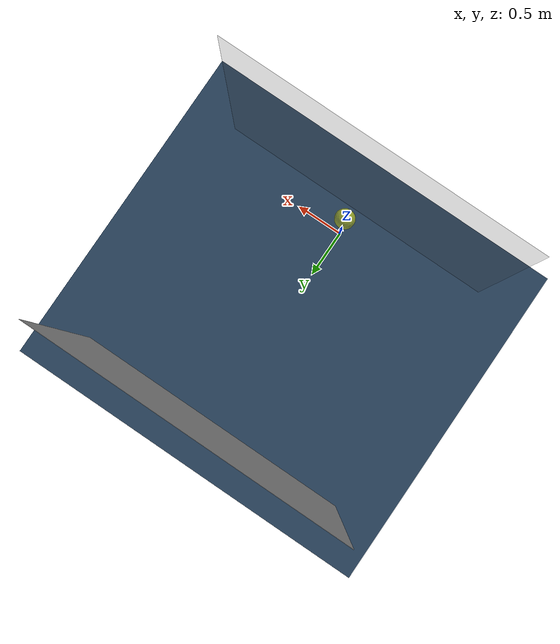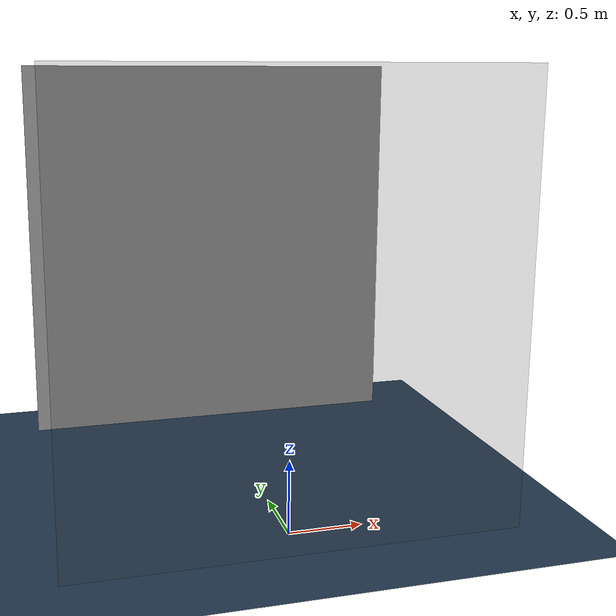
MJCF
<!-- Reference: https://github.com/deepmind/mujoco_menagerie/blob/main/agility_cassie/cassie.xml -->
<mujoco model="2Planes">
  <option timestep="0.005"/>
  <option gravity="0 0 0"/> # Disable the gravity. Ref: https://mujoco.readthedocs.io/en/latest/XMLreference.html#option

  <visual>
    <map force="0.1" zfar="30"/>
    <rgba haze="0.15 0.25 0.35 1"/>
    <global offwidth="400" offheight="320"/>
  </visual>

  <statistic center="0 0 0.7"/>

  <asset>
    <texture type="skybox" builtin="gradient" rgb1=".3 .5 .7" rgb2="0 0 0" width="32" height="512"/>
<!--    I comment this to avoid 6 files cube rendering complications.-->

    <texture name="body" type="cube" builtin="flat" mark="cross" width="127" height="1278" rgb1="0.8 0.6 0.4" rgb2="0.8 0.6 0.4" markrgb="1 1 1" random="0.01"/>
    <material name="body" texture="body" texuniform="true" rgba="0.8 0.6 .4 1"/>

    <texture name="grid" type="2d" builtin="checker" width="512" height="512" rgb1=".1 .2 .3" rgb2=".2 .3 .4"/>
    <material name="grid" texture="grid" texrepeat="1 1" texuniform="true"/> <!--reflectance=".2"-->

<!--    The start of the trial region-->
    <texture name="letter-B" type="cube" gridsize="1 1" file="assets/vector-letter-B.png"/> <!-- The X pic size is 1200 * 1200-->
    <material name="letter-B" texture="letter-B" texuniform="true"/>

    <texture name="letter-X" type="cube" gridsize="1 1" file="assets/vector-letter-X.png"/> <!-- The X pic size is 512 * 512-->
    <material name="letter-X" texture="letter-X" texuniform="true"/>
    <!-- To be noted that the pic size must be integer multiple of the grid size. -->

    <texture name="blue-eye" type="cube" gridsize="3 4" gridlayout=".U..LFRB.D.." file="assets/blue-eye.png"/> <!-- The X pic size is 4096 * 3072-->
    <material name="blue-eye" texture="blue-eye" texuniform="true"/>

    <texture name="smart-glass-display-2d" type="2d" builtin="none" file="assets/vector-letter-B.png" width="5" height="5"/>
    <material name="smart-glass-display-2d" texture="smart-glass-display-2d" texrepeat="1 1" texuniform="true"/>

    <mesh name="hand_thumbprox" file="assets/hand_thumbprox.stl" />
    <mesh name="hand_thumbdist" file="assets/hand_thumbdist.stl" />
<!--    The end of the trial region-->

    <texture name="smart-glass-display-cube-letter-B" type="cube" builtin="none" filedown="assets/vector-letter-B.png"/>
    <material name="smart-glass-display-cube-letter-B" texture="smart-glass-display-cube-letter-B" texuniform="false"/>

    <texture name="smart-glass-display-cube-letter-X" type="cube" builtin="none" filedown="assets/letter-X.png"/>
    <material name="smart-glass-display-cube-letter-X" texture="smart-glass-display-cube-letter-X" texuniform="false"/>

<!--    More materials will be created here with various content textures.-->
  </asset>

  <worldbody>
    <camera name="fixed-eye" pos="0 0 4.5" euler="0 0 0"/>
    <light name="top" directional="true" castshadow="false" cutoff="4" exponent="20"
           diffuse="1 1 1" pos="0 0 20" dir="0 0 -1"/>

    <geom name="floor" size="0 0 .05" type="plane" material="grid" condim="3"/>

    <!-- Multiple rectangular planes: the ambient environment, the smart glass lenses, and the displays/content -->1
    <geom name="ambient-env" type="box" pos="0 2.3 1.5"  size="1.5 .001 1.5" rgba="0.5 0.5 0.5 1" />   # Red.
    <geom name="smart-glass-lenses" type="box" pos="0 -0.3 1.5"  size="1.5 .001 1.5" rgba="0.2 0.2 0.2 0.2"/>
    <geom name="smart-glass-display-0" type="box" pos="0 -0.3 1.5"  size="1.5 .001 1.5" rgba="0.2 0.2 0.2 0.05"/>
    <geom name="smart-glass-display-1" type="box" pos="0 -0.3 1.5"  size="1.5 0.001 1.5"  material="smart-glass-display-cube-letter-B" rgba="0.2 0.2 0.2 0.2"/>  # Green.
    <geom name="smart-glass-display-2" type="box" pos="0 -0.3 1.5" size="1.5 0.001 1.5" material="smart-glass-display-cube-letter-X" rgba="0.2 0.2 0.2 0"/>

<!--    The trial of using material and texture attachments.-->

<!--    The trial stl meshes' geom attachments.-->
    <!-- geom name="hand_thumbprox" type="mesh" mesh="hand_thumbprox" pos="0 0 2" / -->
    <!-- geom name="hand_thumbdist" type="mesh" mesh="hand_thumbdist" pos="0 0 3"/ -->

    <!-- Moving dot or ball -->
    <body name="dot" pos="0 0 1">
      <freejoint/>
      <geom name="sphere" type="sphere" size="0.1" rgba="1 1 0 0.5"/>  # The diameter was 0.1.
    </body>
  </worldbody>
</mujoco>
